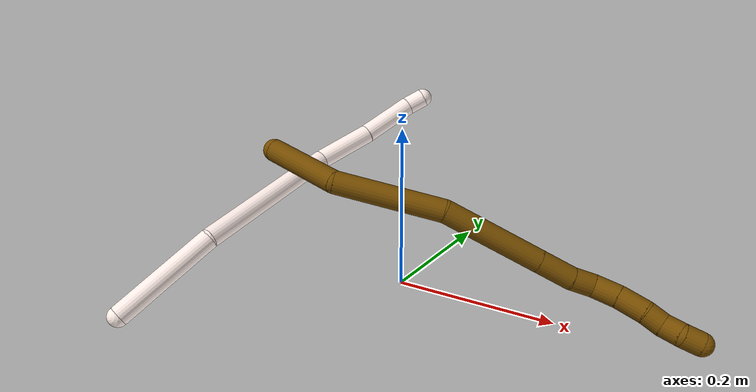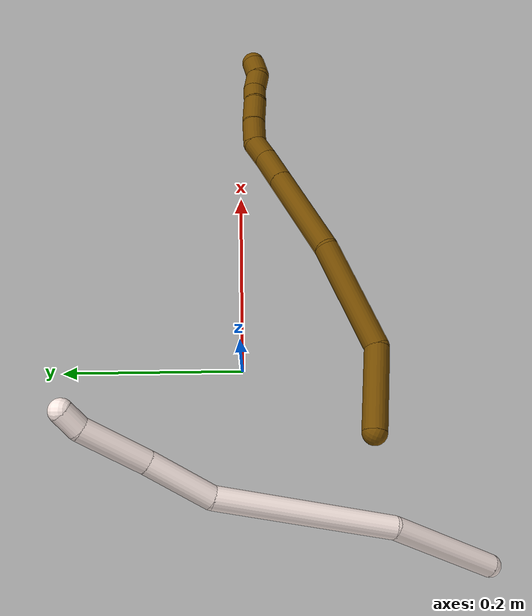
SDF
<sdf version="1.7">
 <world name="default">
  <model name="11">
   <static>0</static>
   <link name="11">
    <collision name="collision-cylinder-e_1_1_4">
     <pose>0.035282 0.038672 0.039611 -0.773412 0.567416 -0.236356</pose>
     <geometry><cylinder><radius>0.0125</radius><length>0.131292</length></cylinder></geometry>
     <surface>
      <friction><ode><mu>1.16</mu><mu2>1.16</mu2><slip1>0</slip1><slip2>0</slip2></ode></friction>
      <contact><ode><kp>1e+06</kp><kd>1</kd><max_vel>0</max_vel><min_depth>0.001</min_depth></ode></contact>
     </surface>
    </collision>
    <visual name="visual-cylinder-e_1_1_4">
     <pose>0.035282 0.038672 0.039611 -0.773412 0.567416 -0.236356</pose>
     <geometry><cylinder><radius>0.0125</radius><length>0.131292</length></cylinder></geometry>
     <material><ambient>1 0.933333 0.909804 1</ambient></material>
    </visual>
    <collision name="collision-cylinder-e_2_4_5">
     <pose>0.117431 0.114767 0.155816 -0.454466 0.502682 -0.118605</pose>
     <geometry><cylinder><radius>0.0125</radius><length>0.194563</length></cylinder></geometry>
     <surface>
      <friction><ode><mu>1.16</mu><mu2>1.16</mu2><slip1>0</slip1><slip2>0</slip2></ode></friction>
      <contact><ode><kp>1e+06</kp><kd>1</kd><max_vel>0</max_vel><min_depth>0.001</min_depth></ode></contact>
     </surface>
    </collision>
    <visual name="visual-cylinder-e_2_4_5">
     <pose>0.117431 0.114767 0.155816 -0.454466 0.502682 -0.118605</pose>
     <geometry><cylinder><radius>0.0125</radius><length>0.194563</length></cylinder></geometry>
     <material><ambient>1 0.933333 0.909804 1</ambient></material>
    </visual>
    <collision name="collision-cylinder-e_3_5_6">
     <pose>0.177921 0.176865 0.257079 -0.785531 0.37221 -0.155693</pose>
     <geometry><cylinder><radius>0.0125</radius><length>0.074913</length></cylinder></geometry>
     <surface>
      <friction><ode><mu>1.16</mu><mu2>1.16</mu2><slip1>0</slip1><slip2>0</slip2></ode></friction>
      <contact><ode><kp>1e+06</kp><kd>1</kd><max_vel>0</max_vel><min_depth>0.001</min_depth></ode></contact>
     </surface>
    </collision>
    <visual name="visual-cylinder-e_3_5_6">
     <pose>0.177921 0.176865 0.257079 -0.785531 0.37221 -0.155693</pose>
     <geometry><cylinder><radius>0.0125</radius><length>0.074913</length></cylinder></geometry>
     <material><ambient>1 0.933333 0.909804 1</ambient></material>
    </visual>
    <collision name="collision-cylinder-e_4_6_7">
     <pose>0.20775 0.225437 0.305277 -0.793145 0.450159 -0.191173</pose>
     <geometry><cylinder><radius>0.0125</radius><length>0.074494</length></cylinder></geometry>
     <surface>
      <friction><ode><mu>1.16</mu><mu2>1.16</mu2><slip1>0</slip1><slip2>0</slip2></ode></friction>
      <contact><ode><kp>1e+06</kp><kd>1</kd><max_vel>0</max_vel><min_depth>0.001</min_depth></ode></contact>
     </surface>
    </collision>
    <visual name="visual-cylinder-e_4_6_7">
     <pose>0.20775 0.225437 0.305277 -0.793145 0.450159 -0.191173</pose>
     <geometry><cylinder><radius>0.0125</radius><length>0.074494</length></cylinder></geometry>
     <material><ambient>1 0.933333 0.909804 1</ambient></material>
    </visual>
    <collision name="collision-cylinder-e_5_7_2">
     <pose>0.227418 0.259684 0.334628 -1.05845 0.283641 -0.16663</pose>
     <geometry><cylinder><radius>0.0125</radius><length>0.024738</length></cylinder></geometry>
     <surface>
      <friction><ode><mu>1.16</mu><mu2>1.16</mu2><slip1>0</slip1><slip2>0</slip2></ode></friction>
      <contact><ode><kp>1e+06</kp><kd>1</kd><max_vel>0</max_vel><min_depth>0.001</min_depth></ode></contact>
     </surface>
    </collision>
    <visual name="visual-cylinder-e_5_7_2">
     <pose>0.227418 0.259684 0.334628 -1.05845 0.283641 -0.16663</pose>
     <geometry><cylinder><radius>0.0125</radius><length>0.024738</length></cylinder></geometry>
     <material><ambient>1 0.933333 0.909804 1</ambient></material>
    </visual>
    <collision name="collision-sphere-2">
     <pose>0.23088 0.270034 0.340449 0 -0 0</pose>
     <geometry><sphere><radius>0.0125</radius></sphere></geometry>
     <surface>
      <friction><ode><mu>1.16</mu><mu2>1.16</mu2><slip1>0</slip1><slip2>0</slip2></ode></friction>
      <contact><ode><kp>1e+06</kp><kd>1</kd><max_vel>0</max_vel><min_depth>0.001</min_depth></ode></contact>
     </surface>
    </collision>
    <visual name="visual-sphere-2">
     <pose>0.23088 0.270034 0.340449 0 -0 0</pose>
     <geometry><sphere><radius>0.0125</radius></sphere></geometry>
     <material><ambient>1 0.933333 0.909804 1</ambient></material>
    </visual>
    <collision name="collision-sphere-7">
     <pose>0.223957 0.249334 0.328807 0 -0 0</pose>
     <geometry><sphere><radius>0.0125</radius></sphere></geometry>
     <surface>
      <friction><ode><mu>1.16</mu><mu2>1.16</mu2><slip1>0</slip1><slip2>0</slip2></ode></friction>
      <contact><ode><kp>1e+06</kp><kd>1</kd><max_vel>0</max_vel><min_depth>0.001</min_depth></ode></contact>
     </surface>
    </collision>
    <visual name="visual-sphere-7">
     <pose>0.223957 0.249334 0.328807 0 -0 0</pose>
     <geometry><sphere><radius>0.0125</radius></sphere></geometry>
     <material><ambient>1 0.933333 0.909804 1</ambient></material>
    </visual>
    <collision name="collision-sphere-6">
     <pose>0.191544 0.20154 0.281748 0 -0 0</pose>
     <geometry><sphere><radius>0.0125</radius></sphere></geometry>
     <surface>
      <friction><ode><mu>1.16</mu><mu2>1.16</mu2><slip1>0</slip1><slip2>0</slip2></ode></friction>
      <contact><ode><kp>1e+06</kp><kd>1</kd><max_vel>0</max_vel><min_depth>0.001</min_depth></ode></contact>
     </surface>
    </collision>
    <visual name="visual-sphere-6">
     <pose>0.191544 0.20154 0.281748 0 -0 0</pose>
     <geometry><sphere><radius>0.0125</radius></sphere></geometry>
     <material><ambient>1 0.933333 0.909804 1</ambient></material>
    </visual>
    <collision name="collision-sphere-5">
     <pose>0.164299 0.152189 0.23241 0 -0 0</pose>
     <geometry><sphere><radius>0.0125</radius></sphere></geometry>
     <surface>
      <friction><ode><mu>1.16</mu><mu2>1.16</mu2><slip1>0</slip1><slip2>0</slip2></ode></friction>
      <contact><ode><kp>1e+06</kp><kd>1</kd><max_vel>0</max_vel><min_depth>0.001</min_depth></ode></contact>
     </surface>
    </collision>
    <visual name="visual-sphere-5">
     <pose>0.164299 0.152189 0.23241 0 -0 0</pose>
     <geometry><sphere><radius>0.0125</radius></sphere></geometry>
     <material><ambient>1 0.933333 0.909804 1</ambient></material>
    </visual>
    <collision name="collision-sphere-1">
     <geometry><sphere><radius>0.0125</radius></sphere></geometry>
     <surface>
      <friction><ode><mu>1.16</mu><mu2>1.16</mu2><slip1>0</slip1><slip2>0</slip2></ode></friction>
      <contact><ode><kp>1e+06</kp><kd>1</kd><max_vel>0</max_vel><min_depth>0.001</min_depth></ode></contact>
     </surface>
    </collision>
    <visual name="visual-sphere-1">
     <geometry><sphere><radius>0.0125</radius></sphere></geometry>
     <material><ambient>1 0.933333 0.909804 1</ambient></material>
    </visual>
    <collision name="collision-sphere-4">
     <pose>0.070563 0.077345 0.079222 0 -0 0</pose>
     <geometry><sphere><radius>0.0125</radius></sphere></geometry>
     <surface>
      <friction><ode><mu>1.16</mu><mu2>1.16</mu2><slip1>0</slip1><slip2>0</slip2></ode></friction>
      <contact><ode><kp>1e+06</kp><kd>1</kd><max_vel>0</max_vel><min_depth>0.001</min_depth></ode></contact>
     </surface>
    </collision>
    <visual name="visual-sphere-4">
     <pose>0.070563 0.077345 0.079222 0 -0 0</pose>
     <geometry><sphere><radius>0.0125</radius></sphere></geometry>
     <material><ambient>1 0.933333 0.909804 1</ambient></material>
    </visual>
    <inertial>
     <pose>0.123821 0.127748 0.171589 0 -0 0</pose>
     <mass>0.5</mass>
     <inertia>
      <ixx>0.000673</ixx>
      <ixy>0</ixy>
      <ixz>0</ixz>
      <iyy>0.000685</iyy>
      <iyz>0</iyz>
      <izz>-0.000812</izz>
     </inertia>
    </inertial>
   </link>
   <pose>-0.213724 -0.261011 0.012499 2.23684 -0.968961 2.52145</pose>
  </model>
  <model name="12">
   <static>0</static>
   <link name="12">
    <collision name="collision-cylinder-e_1_1_4">
     <pose>0.032586 0.024319 -0.016468 -2.16604 0.837245 -1.39571</pose>
     <geometry><cylinder><radius>0.0125</radius><length>0.087737</length></cylinder></geometry>
     <surface>
      <friction><ode><mu>1.16</mu><mu2>1.16</mu2><slip1>0</slip1><slip2>0</slip2></ode></friction>
      <contact><ode><kp>1e+06</kp><kd>1</kd><max_vel>0</max_vel><min_depth>0.001</min_depth></ode></contact>
     </surface>
    </collision>
    <visual name="visual-cylinder-e_1_1_4">
     <pose>0.032586 0.024319 -0.016468 -2.16604 0.837245 -1.39571</pose>
     <geometry><cylinder><radius>0.0125</radius><length>0.087737</length></cylinder></geometry>
     <material><ambient>0.466667 0.301961 0 1</ambient></material>
    </visual>
    <collision name="collision-cylinder-e_2_4_5">
     <pose>0.097567 0.070679 -0.077634 -2.68347 0.576415 -1.80874</pose>
     <geometry><cylinder><radius>0.0125</radius><length>0.11888</length></cylinder></geometry>
     <surface>
      <friction><ode><mu>1.16</mu><mu2>1.16</mu2><slip1>0</slip1><slip2>0</slip2></ode></friction>
      <contact><ode><kp>1e+06</kp><kd>1</kd><max_vel>0</max_vel><min_depth>0.001</min_depth></ode></contact>
     </surface>
    </collision>
    <visual name="visual-cylinder-e_2_4_5">
     <pose>0.097567 0.070679 -0.077634 -2.68347 0.576415 -1.80874</pose>
     <geometry><cylinder><radius>0.0125</radius><length>0.11888</length></cylinder></geometry>
     <material><ambient>0.466667 0.301961 0 1</ambient></material>
    </visual>
    <collision name="collision-cylinder-e_3_5_6">
     <pose>0.167531 0.100228 -0.162678 -2.9576 0.741258 -2.67538</pose>
     <geometry><cylinder><radius>0.0125</radius><length>0.111277</length></cylinder></geometry>
     <surface>
      <friction><ode><mu>1.16</mu><mu2>1.16</mu2><slip1>0</slip1><slip2>0</slip2></ode></friction>
      <contact><ode><kp>1e+06</kp><kd>1</kd><max_vel>0</max_vel><min_depth>0.001</min_depth></ode></contact>
     </surface>
    </collision>
    <visual name="visual-cylinder-e_3_5_6">
     <pose>0.167531 0.100228 -0.162678 -2.9576 0.741258 -2.67538</pose>
     <geometry><cylinder><radius>0.0125</radius><length>0.111277</length></cylinder></geometry>
     <material><ambient>0.466667 0.301961 0 1</ambient></material>
    </visual>
    <collision name="collision-cylinder-e_4_6_7">
     <pose>0.218495 0.110414 -0.217382 -2.95724 0.742274 -2.67518</pose>
     <geometry><cylinder><radius>0.0125</radius><length>0.039634</length></cylinder></geometry>
     <surface>
      <friction><ode><mu>1.16</mu><mu2>1.16</mu2><slip1>0</slip1><slip2>0</slip2></ode></friction>
      <contact><ode><kp>1e+06</kp><kd>1</kd><max_vel>0</max_vel><min_depth>0.001</min_depth></ode></contact>
     </surface>
    </collision>
    <visual name="visual-cylinder-e_4_6_7">
     <pose>0.218495 0.110414 -0.217382 -2.95724 0.742274 -2.67518</pose>
     <geometry><cylinder><radius>0.0125</radius><length>0.039634</length></cylinder></geometry>
     <material><ambient>0.466667 0.301961 0 1</ambient></material>
    </visual>
    <collision name="collision-cylinder-e_5_7_8">
     <pose>0.238736 0.115669 -0.241787 -2.89043 0.583304 -2.34546</pose>
     <geometry><cylinder><radius>0.0125</radius><length>0.024859</length></cylinder></geometry>
     <surface>
      <friction><ode><mu>1.16</mu><mu2>1.16</mu2><slip1>0</slip1><slip2>0</slip2></ode></friction>
      <contact><ode><kp>1e+06</kp><kd>1</kd><max_vel>0</max_vel><min_depth>0.001</min_depth></ode></contact>
     </surface>
    </collision>
    <visual name="visual-cylinder-e_5_7_8">
     <pose>0.238736 0.115669 -0.241787 -2.89043 0.583304 -2.34546</pose>
     <geometry><cylinder><radius>0.0125</radius><length>0.024859</length></cylinder></geometry>
     <material><ambient>0.466667 0.301961 0 1</ambient></material>
    </visual>
    <collision name="collision-cylinder-e_6_8_9">
     <pose>0.25531 0.125487 -0.258469 -2.31256 0.780739 -1.50382</pose>
     <geometry><cylinder><radius>0.0125</radius><length>0.027645</length></cylinder></geometry>
     <surface>
      <friction><ode><mu>1.16</mu><mu2>1.16</mu2><slip1>0</slip1><slip2>0</slip2></ode></friction>
      <contact><ode><kp>1e+06</kp><kd>1</kd><max_vel>0</max_vel><min_depth>0.001</min_depth></ode></contact>
     </surface>
    </collision>
    <visual name="visual-cylinder-e_6_8_9">
     <pose>0.25531 0.125487 -0.258469 -2.31256 0.780739 -1.50382</pose>
     <geometry><cylinder><radius>0.0125</radius><length>0.027645</length></cylinder></geometry>
     <material><ambient>0.466667 0.301961 0 1</ambient></material>
    </visual>
    <collision name="collision-cylinder-e_7_9_10">
     <pose>0.27672 0.140104 -0.270898 -2.23662 0.894168 -1.557</pose>
     <geometry><cylinder><radius>0.0125</radius><length>0.029963</length></cylinder></geometry>
     <surface>
      <friction><ode><mu>1.16</mu><mu2>1.16</mu2><slip1>0</slip1><slip2>0</slip2></ode></friction>
      <contact><ode><kp>1e+06</kp><kd>1</kd><max_vel>0</max_vel><min_depth>0.001</min_depth></ode></contact>
     </surface>
    </collision>
    <visual name="visual-cylinder-e_7_9_10">
     <pose>0.27672 0.140104 -0.270898 -2.23662 0.894168 -1.557</pose>
     <geometry><cylinder><radius>0.0125</radius><length>0.029963</length></cylinder></geometry>
     <material><ambient>0.466667 0.301961 0 1</ambient></material>
    </visual>
    <collision name="collision-cylinder-e_8_10_11">
     <pose>0.296869 0.150603 -0.281001 -2.5145 1.00985 -2.08052</pose>
     <geometry><cylinder><radius>0.0125</radius><length>0.020003</length></cylinder></geometry>
     <surface>
      <friction><ode><mu>1.16</mu><mu2>1.16</mu2><slip1>0</slip1><slip2>0</slip2></ode></friction>
      <contact><ode><kp>1e+06</kp><kd>1</kd><max_vel>0</max_vel><min_depth>0.001</min_depth></ode></contact>
     </surface>
    </collision>
    <visual name="visual-cylinder-e_8_10_11">
     <pose>0.296869 0.150603 -0.281001 -2.5145 1.00985 -2.08052</pose>
     <geometry><cylinder><radius>0.0125</radius><length>0.020003</length></cylinder></geometry>
     <material><ambient>0.466667 0.301961 0 1</ambient></material>
    </visual>
    <collision name="collision-cylinder-e_9_11_12">
     <pose>0.312696 0.159959 -0.287953 -1.97198 0.826852 -1.17042</pose>
     <geometry><cylinder><radius>0.0125</radius><length>0.02</length></cylinder></geometry>
     <surface>
      <friction><ode><mu>1.16</mu><mu2>1.16</mu2><slip1>0</slip1><slip2>0</slip2></ode></friction>
      <contact><ode><kp>1e+06</kp><kd>1</kd><max_vel>0</max_vel><min_depth>0.001</min_depth></ode></contact>
     </surface>
    </collision>
    <visual name="visual-cylinder-e_9_11_12">
     <pose>0.312696 0.159959 -0.287953 -1.97198 0.826852 -1.17042</pose>
     <geometry><cylinder><radius>0.0125</radius><length>0.02</length></cylinder></geometry>
     <material><ambient>0.466667 0.301961 0 1</ambient></material>
    </visual>
    <collision name="collision-cylinder-e_10_12_2">
     <pose>0.326987 0.169508 -0.296999 -2.66388 0.765975 -2.05428</pose>
     <geometry><cylinder><radius>0.0125</radius><length>0.020003</length></cylinder></geometry>
     <surface>
      <friction><ode><mu>1.16</mu><mu2>1.16</mu2><slip1>0</slip1><slip2>0</slip2></ode></friction>
      <contact><ode><kp>1e+06</kp><kd>1</kd><max_vel>0</max_vel><min_depth>0.001</min_depth></ode></contact>
     </surface>
    </collision>
    <visual name="visual-cylinder-e_10_12_2">
     <pose>0.326987 0.169508 -0.296999 -2.66388 0.765975 -2.05428</pose>
     <geometry><cylinder><radius>0.0125</radius><length>0.020003</length></cylinder></geometry>
     <material><ambient>0.466667 0.301961 0 1</ambient></material>
    </visual>
    <collision name="collision-sphere-2">
     <pose>0.333921 0.172822 -0.3034 0 -0 0</pose>
     <geometry><sphere><radius>0.0125</radius></sphere></geometry>
     <surface>
      <friction><ode><mu>1.16</mu><mu2>1.16</mu2><slip1>0</slip1><slip2>0</slip2></ode></friction>
      <contact><ode><kp>1e+06</kp><kd>1</kd><max_vel>0</max_vel><min_depth>0.001</min_depth></ode></contact>
     </surface>
    </collision>
    <visual name="visual-sphere-2">
     <pose>0.333921 0.172822 -0.3034 0 -0 0</pose>
     <geometry><sphere><radius>0.0125</radius></sphere></geometry>
     <material><ambient>0.466667 0.301961 0 1</ambient></material>
    </visual>
    <collision name="collision-sphere-12">
     <pose>0.320054 0.166194 -0.290598 0 -0 0</pose>
     <geometry><sphere><radius>0.0125</radius></sphere></geometry>
     <surface>
      <friction><ode><mu>1.16</mu><mu2>1.16</mu2><slip1>0</slip1><slip2>0</slip2></ode></friction>
      <contact><ode><kp>1e+06</kp><kd>1</kd><max_vel>0</max_vel><min_depth>0.001</min_depth></ode></contact>
     </surface>
    </collision>
    <visual name="visual-sphere-12">
     <pose>0.320054 0.166194 -0.290598 0 -0 0</pose>
     <geometry><sphere><radius>0.0125</radius></sphere></geometry>
     <material><ambient>0.466667 0.301961 0 1</ambient></material>
    </visual>
    <collision name="collision-sphere-11">
     <pose>0.305338 0.153725 -0.285309 0 -0 0</pose>
     <geometry><sphere><radius>0.0125</radius></sphere></geometry>
     <surface>
      <friction><ode><mu>1.16</mu><mu2>1.16</mu2><slip1>0</slip1><slip2>0</slip2></ode></friction>
      <contact><ode><kp>1e+06</kp><kd>1</kd><max_vel>0</max_vel><min_depth>0.001</min_depth></ode></contact>
     </surface>
    </collision>
    <visual name="visual-sphere-11">
     <pose>0.305338 0.153725 -0.285309 0 -0 0</pose>
     <geometry><sphere><radius>0.0125</radius></sphere></geometry>
     <material><ambient>0.466667 0.301961 0 1</ambient></material>
    </visual>
    <collision name="collision-sphere-10">
     <pose>0.288401 0.147481 -0.276692 0 -0 0</pose>
     <geometry><sphere><radius>0.0125</radius></sphere></geometry>
     <surface>
      <friction><ode><mu>1.16</mu><mu2>1.16</mu2><slip1>0</slip1><slip2>0</slip2></ode></friction>
      <contact><ode><kp>1e+06</kp><kd>1</kd><max_vel>0</max_vel><min_depth>0.001</min_depth></ode></contact>
     </surface>
    </collision>
    <visual name="visual-sphere-10">
     <pose>0.288401 0.147481 -0.276692 0 -0 0</pose>
     <geometry><sphere><radius>0.0125</radius></sphere></geometry>
     <material><ambient>0.466667 0.301961 0 1</ambient></material>
    </visual>
    <collision name="collision-sphere-9">
     <pose>0.265039 0.132726 -0.265103 0 -0 0</pose>
     <geometry><sphere><radius>0.0125</radius></sphere></geometry>
     <surface>
      <friction><ode><mu>1.16</mu><mu2>1.16</mu2><slip1>0</slip1><slip2>0</slip2></ode></friction>
      <contact><ode><kp>1e+06</kp><kd>1</kd><max_vel>0</max_vel><min_depth>0.001</min_depth></ode></contact>
     </surface>
    </collision>
    <visual name="visual-sphere-9">
     <pose>0.265039 0.132726 -0.265103 0 -0 0</pose>
     <geometry><sphere><radius>0.0125</radius></sphere></geometry>
     <material><ambient>0.466667 0.301961 0 1</ambient></material>
    </visual>
    <collision name="collision-sphere-4">
     <pose>0.065171 0.048638 -0.032937 0 -0 0</pose>
     <geometry><sphere><radius>0.0125</radius></sphere></geometry>
     <surface>
      <friction><ode><mu>1.16</mu><mu2>1.16</mu2><slip1>0</slip1><slip2>0</slip2></ode></friction>
      <contact><ode><kp>1e+06</kp><kd>1</kd><max_vel>0</max_vel><min_depth>0.001</min_depth></ode></contact>
     </surface>
    </collision>
    <visual name="visual-sphere-4">
     <pose>0.065171 0.048638 -0.032937 0 -0 0</pose>
     <geometry><sphere><radius>0.0125</radius></sphere></geometry>
     <material><ambient>0.466667 0.301961 0 1</ambient></material>
    </visual>
    <collision name="collision-sphere-1">
     <geometry><sphere><radius>0.0125</radius></sphere></geometry>
     <surface>
      <friction><ode><mu>1.16</mu><mu2>1.16</mu2><slip1>0</slip1><slip2>0</slip2></ode></friction>
      <contact><ode><kp>1e+06</kp><kd>1</kd><max_vel>0</max_vel><min_depth>0.001</min_depth></ode></contact>
     </surface>
    </collision>
    <visual name="visual-sphere-1">
     <geometry><sphere><radius>0.0125</radius></sphere></geometry>
     <material><ambient>0.466667 0.301961 0 1</ambient></material>
    </visual>
    <collision name="collision-sphere-8">
     <pose>0.245582 0.118247 -0.251835 0 -0 0</pose>
     <geometry><sphere><radius>0.0125</radius></sphere></geometry>
     <surface>
      <friction><ode><mu>1.16</mu><mu2>1.16</mu2><slip1>0</slip1><slip2>0</slip2></ode></friction>
      <contact><ode><kp>1e+06</kp><kd>1</kd><max_vel>0</max_vel><min_depth>0.001</min_depth></ode></contact>
     </surface>
    </collision>
    <visual name="visual-sphere-8">
     <pose>0.245582 0.118247 -0.251835 0 -0 0</pose>
     <geometry><sphere><radius>0.0125</radius></sphere></geometry>
     <material><ambient>0.466667 0.301961 0 1</ambient></material>
    </visual>
    <collision name="collision-sphere-5">
     <pose>0.129963 0.092719 -0.122331 0 -0 0</pose>
     <geometry><sphere><radius>0.0125</radius></sphere></geometry>
     <surface>
      <friction><ode><mu>1.16</mu><mu2>1.16</mu2><slip1>0</slip1><slip2>0</slip2></ode></friction>
      <contact><ode><kp>1e+06</kp><kd>1</kd><max_vel>0</max_vel><min_depth>0.001</min_depth></ode></contact>
     </surface>
    </collision>
    <visual name="visual-sphere-5">
     <pose>0.129963 0.092719 -0.122331 0 -0 0</pose>
     <geometry><sphere><radius>0.0125</radius></sphere></geometry>
     <material><ambient>0.466667 0.301961 0 1</ambient></material>
    </visual>
    <collision name="collision-sphere-6">
     <pose>0.205099 0.107737 -0.203025 0 -0 0</pose>
     <geometry><sphere><radius>0.0125</radius></sphere></geometry>
     <surface>
      <friction><ode><mu>1.16</mu><mu2>1.16</mu2><slip1>0</slip1><slip2>0</slip2></ode></friction>
      <contact><ode><kp>1e+06</kp><kd>1</kd><max_vel>0</max_vel><min_depth>0.001</min_depth></ode></contact>
     </surface>
    </collision>
    <visual name="visual-sphere-6">
     <pose>0.205099 0.107737 -0.203025 0 -0 0</pose>
     <geometry><sphere><radius>0.0125</radius></sphere></geometry>
     <material><ambient>0.466667 0.301961 0 1</ambient></material>
    </visual>
    <collision name="collision-sphere-7">
     <pose>0.23189 0.113091 -0.231738 0 -0 0</pose>
     <geometry><sphere><radius>0.0125</radius></sphere></geometry>
     <surface>
      <friction><ode><mu>1.16</mu><mu2>1.16</mu2><slip1>0</slip1><slip2>0</slip2></ode></friction>
      <contact><ode><kp>1e+06</kp><kd>1</kd><max_vel>0</max_vel><min_depth>0.001</min_depth></ode></contact>
     </surface>
    </collision>
    <visual name="visual-sphere-7">
     <pose>0.23189 0.113091 -0.231738 0 -0 0</pose>
     <geometry><sphere><radius>0.0125</radius></sphere></geometry>
     <material><ambient>0.466667 0.301961 0 1</ambient></material>
    </visual>
    <inertial>
     <pose>0.163554 0.09242 -0.151971 0 -0 0</pose>
     <mass>0.5</mass>
     <inertia>
      <ixx>-0.000287</ixx>
      <ixy>0</ixy>
      <ixz>0</ixz>
      <iyy>2.7e-05</iyy>
      <iyz>0</iyz>
      <izz>-0.00035</izz>
     </inertia>
    </inertial>
   </link>
   <pose>-0.088676 -0.125807 0.191135 1.50193 0.878388 -0.518383</pose>
  </model>
 </world>
</sdf>
